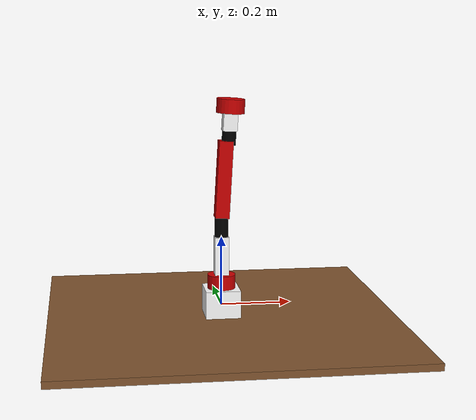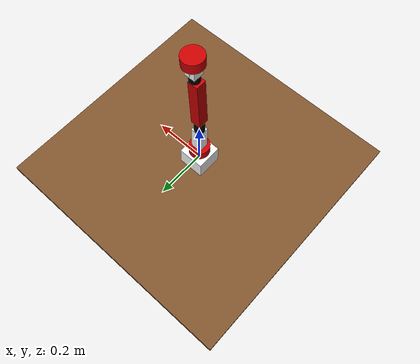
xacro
<?xml version="1.0"?>

<robot name="seven_dof_arm" xmlns:xacro="http://ros.org/wiki/xacro">

  <!-- Include materials -->

    <material name="Black">
        <color rgba="0.0 0.0 0.0 1.0"/>
    </material>

    <material name="Red">
        <color rgba="0.8 0.0 0.0 1.0"/>
    </material>

    <material name="White">
        <color rgba="1.0 1.0 1.0 1.0"/>
    </material>

  <xacro:property name="deg_to_rad" value="0.01745329251994329577"/>

  <!-- Constants -->
  <xacro:property name="M_SCALE" value="0.001 0.001 0.001"/>
  <xacro:property name="M_PI" value="3.14159"/>

  <!-- Shoulder pan link properties -->
  <xacro:property name="shoulder_pan_width" value="0.04" />
  <xacro:property name="shoulder_pan_len" value="0.08" />

  <!-- Shoulder pitch link properties -->
  <xacro:property name="shoulder_pitch_len" value="0.14" />
  <xacro:property name="shoulder_pitch_width" value="0.04" />
  <xacro:property name="shoulder_pitch_height" value="0.04" />

  <!-- Elbow roll link properties -->
  <xacro:property name="elbow_roll_width" value="0.02" />
  <xacro:property name="elbow_roll_len" value="0.06" />

  <!-- Elbow pitch link properties -->
  <xacro:property name="elbow_pitch_len" value="0.22" />
  <xacro:property name="elbow_pitch_width" value="0.04" />
  <xacro:property name="elbow_pitch_height" value="0.04" />

  <!-- Wrist roll link properties -->
  <xacro:property name="wrist_roll_width" value="0.02" />
  <xacro:property name="wrist_roll_len" value="0.04" />

  <!-- wrist pitch link properties -->
  <xacro:property name="wrist_pitch_len" value="0.06" />
  <xacro:property name="wrist_pitch_width" value="0.04" />
  <xacro:property name="wrist_pitch_height" value="0.04" />

  <!-- effector link properties -->
  <xacro:property name="effector_width" value="0.04" />
  <xacro:property name="effector_len" value="0.04" />

   <xacro:macro name="inertial_matrix" params="mass">
      <inertial>
      	<mass value="${mass}" />
        <inertia ixx="1.0" ixy="0.0" ixz="0.0" iyy="0.5" iyz="0.0" izz="1.0" />
      </inertial>
   </xacro:macro>

   <xacro:macro name="transmission_block" params="joint_name">
	  <transmission name="tran1">
	    <type>transmission_interface/SimpleTransmission</type>
	    <joint name="${joint_name}">
	      <hardwareInterface>hardware_interface/PositionJointInterface</hardwareInterface>
	    </joint>
	    <actuator name="motor1">
	      <hardwareInterface>hardware_interface/PositionJointInterface</hardwareInterface>
	      <mechanicalReduction>1</mechanicalReduction>
	    </actuator>
	  </transmission>
   </xacro:macro>

<!-- BOTTOM FIXED LINK
This link is the base of the arm in which arm is placed

-->

<link name="robot_footprint">

</link>
<joint name="base_joint" type="fixed">
  <origin xyz="0.0 0.0 0.0" rpy="0.0 0.0 0.0"/>
  <parent link="robot_footprint"/>
  <child link="base_link"/>
</joint>

  <joint name="bottom_joint" type="fixed">
    <origin xyz="0 0 0" rpy="0 0 0" />
    <parent link="base_link"/>
    <child link="bottom_link"/>
  </joint>

  <link name="bottom_link">

    <visual>
      <origin xyz=" 0 0 -0.04"  rpy="0 0 0"/>
      <geometry>

	       <box size="1 1 0.02" />

      </geometry>
      <material name="Brown" />
    </visual>

    <collision>
      <origin xyz=" 0 0 -0.04"  rpy="0 0 0"/>
      <geometry>
	       <box size="1 1 0.02" />
      </geometry>
      </collision>>

  </link>

  <gazebo reference="bottom_link">
    <material>Gazebo/White</material>
  </gazebo>

  <!-- BASE LINK -->
  <link name="base_link">

    <visual>
      <origin xyz="0 0 0" rpy="${M_PI/2} 0 0" /> <!-- rotate PI/2 -->
      <geometry>

	       <box size="0.1 0.1 0.1" />

      </geometry>
      <material name="White" />
    </visual>

    <collision>
      <origin xyz="0 0 0" rpy="${M_PI/2} 0 0" /> <!-- rotate PI/2 -->
      <geometry>

	       <box size="0.1 0.1 0.1" />

      </geometry>
    </collision>>
	  <xacro:inertial_matrix mass="1"/>

  </link>

  <gazebo reference="base_link">
    <material>Gazebo/White</material>
  </gazebo>

  <joint name="shoulder_pan_joint" type="revolute">
    <parent link="base_link"/>
    <child link="shoulder_pan_link"/>
    <origin xyz="0 0 0.05" rpy="0 ${M_PI/2} ${M_PI*0}" />
    <axis xyz="-1 0 0" />
    <limit effort="300" velocity="1" lower="-2.61799387799" upper="1.98394848567"/>
    <dynamics damping="50" friction="1"/>
  </joint>

  <!-- SHOULDER PAN LINK -->
  <link name="shoulder_pan_link" >

    <visual>
      <origin xyz="0 0 0" rpy="0 ${M_PI/2} 0" />
      <geometry>

            <cylinder radius="${shoulder_pan_width}" length="${shoulder_pan_len}"/>

      </geometry>
      <material name="Red" />
    </visual>

    <collision>
      <origin xyz="0 0 0" rpy="0 ${M_PI/2} 0" />
      <geometry>
            <cylinder radius="${shoulder_pan_width}" length="${shoulder_pan_len}"/>
      </geometry>
    </collision>
	 <xacro:inertial_matrix mass="1"/>
  </link>

  <gazebo reference="shoulder_pan_link">
    <material>Gazebo/Red</material>
  </gazebo>

  <joint name="shoulder_pitch_joint" type="revolute">
    <parent link="shoulder_pan_link"/>
    <child link="shoulder_pitch_link"/>
    <origin xyz="-0.041 0.0021 0.0" rpy="-${M_PI/2} 0 ${M_PI/2}" />
    <axis xyz="1 0 0" />
    <limit effort="300" velocity="1" lower="-1.19962513147" upper="1.89994105047" />
    <dynamics damping="50" friction="1"/>
  </joint>

  <!-- SHOULDER PITCH LINK -->
  <link name="shoulder_pitch_link" >

    <visual>
      <origin xyz="-0.002 0 0.04" rpy="0 ${M_PI/2} 0" />
      <geometry>

           <box size="${shoulder_pitch_len} ${shoulder_pitch_width} ${shoulder_pitch_height}" />

      </geometry>
      <material name="White" />
    </visual>

    <collision>
      <origin xyz="-0.002 0 0.04" rpy="0 ${M_PI/2} 0" />
      <geometry>
           <box size="${shoulder_pitch_len} ${shoulder_pitch_width} ${shoulder_pitch_height}" />
      </geometry>
    </collision>
	 <xacro:inertial_matrix mass="1"/>
  </link>

  <gazebo reference="shoulder_pitch_link">
    <material>Gazebo/White</material>
  </gazebo>

  <joint name="elbow_roll_joint" type="revolute">
    <parent link="shoulder_pitch_link"/>
    <child link="elbow_roll_link"/>
    <origin xyz="-0.002 0 0.1206" rpy="${M_PI} ${M_PI/2} 0" />
    <axis xyz="-1 0 0" />
    <limit effort="300" velocity="1" lower="-2.61799387799" upper="0.705631162427" />
    <dynamics damping="50" friction="1"/>
  </joint>

  <!-- ELBOW ROLL LINK -->
  <link name="elbow_roll_link" >

    <visual>
      <origin xyz="-0.015 0.0 -0.0" rpy="0 ${M_PI/2} 0" />
      <geometry>

            <cylinder radius="${elbow_roll_width}" length="${elbow_roll_len}"/>

      </geometry>
      <material name="Black" />
    </visual>

    <collision>
      <origin xyz="-0.015 0.0 -0.0" rpy="0 ${M_PI/2} 0" />
      <geometry>
            <cylinder radius="${elbow_roll_width}" length="${elbow_roll_len}"/>
      </geometry>
    </collision>
	<xacro:inertial_matrix mass="1"/>
  </link>

  <gazebo reference="elbow_roll_link">
    <material>Gazebo/Black</material>
  </gazebo>

  <joint name="elbow_pitch_joint" type="revolute">
    <parent link="elbow_roll_link"/>
    <child link="elbow_pitch_link"/>
    <origin xyz="-0.035 0 0.0" rpy="0.055 ${M_PI/2} 0" />
    <axis xyz="1 0 0" />
    <limit effort="300" velocity="1" lower="-1.5953400194" upper="1.93281579274" />
    <dynamics damping="50" friction="1"/>
  </joint>

  <!-- ELBOW PITCH LINK -->
  <link name="elbow_pitch_link" >

    <visual>
      <origin xyz="0 0 -0.12" rpy="0 ${M_PI/2} 0" />
      <geometry>

       <box size="${elbow_pitch_len} ${elbow_pitch_width} ${elbow_pitch_height}" />

      </geometry>
      <material name="Red" />
    </visual>

    <collision>
      <origin xyz="0 0 -0.12" rpy="0 ${M_PI/2} 0" />
      <geometry>
       <box size="${elbow_pitch_len} ${elbow_pitch_width} ${elbow_pitch_height}" />
      </geometry>
    </collision>
	 <xacro:inertial_matrix mass="1"/>
  </link>

  <gazebo reference="elbow_pitch_link">
    <material>Gazebo/Red</material>
  </gazebo>

  <joint name="wrist_roll_joint" type="revolute">
    <parent link="elbow_pitch_link"/>
    <child link="wrist_roll_link"/>
    <origin xyz="0.0 0.0081 -.248" rpy="0 ${M_PI/2} ${M_PI}" />
    <axis xyz="1 0 0" />
    <limit effort="300" velocity="1" lower="-2.61799387799" upper="2.6128806087" />
    <dynamics damping="50" friction="1"/>
  </joint>

  <!-- WRIST ROLL LINK -->
  <link name="wrist_roll_link" >
    <visual>
      <origin xyz="0 0 0" rpy="0 ${M_PI/2} 0" />
      <geometry>

           <cylinder radius="${elbow_roll_width}" length="${elbow_roll_len}"/>

      </geometry>
      <material name="Black" />
    </visual>

    <collision>
      <origin xyz="0 0 0" rpy="0 ${M_PI/2} 0" />
      <geometry>
           <cylinder radius="${elbow_roll_width}" length="${elbow_roll_len}"/>
      </geometry>
    </collision>
	 <xacro:inertial_matrix mass="1"/>

  </link>

  <gazebo reference="wrist_roll_link">
    <material>Gazebo/Black</material>
  </gazebo>

  <joint name="wrist_pitch_joint" type="revolute">
    <parent link="wrist_roll_link"/>
    <child link="wrist_pitch_link"/>
    <origin xyz="0.0 0.0 0.0001" rpy="0 ${M_PI/2} 0" />
    <axis xyz="1 0 0" />
    <limit effort="300" velocity="1" lower="-1.5953400194" upper="1.98394848567" />
    <dynamics damping="50" friction="1"/>
  </joint>

  <!-- WRIST PITCH LINK -->
  <link name="wrist_pitch_link">

    <visual>
      <origin xyz="0 0 0.04" rpy="0 ${M_PI/2} 0" />
      <geometry>

           <box size="${wrist_pitch_len} ${wrist_pitch_width} ${wrist_pitch_height}" />

      </geometry>
      <material name="White" />
    </visual>

    <collision>
      <origin xyz="0 0 0.04 " rpy="0 ${M_PI/2} 0" />
      <geometry>
          <box size="${wrist_pitch_len} ${wrist_pitch_width} ${wrist_pitch_height}" />
      </geometry>
    </collision>
	 <xacro:inertial_matrix mass="1"/>

  </link>

  <gazebo reference="wrist_pitch_link">
    <material>Gazebo/White</material>
  </gazebo>

  <joint name="effector_joint" type="fixed">
    <parent link="wrist_pitch_link"/>
    <child link="effector_link"/>
    <origin xyz="0 0 0.080" rpy="${1.5*M_PI} -${.5*M_PI} 0" />
    <axis xyz="1 0 0" />
  </joint>

  <!-- END Effector LINK -->
  <link name="effector_link">

    <visual>
      <origin xyz="0 0 0" rpy="0 ${M_PI/2} 0" />
      <geometry>

            <cylinder radius="${effector_width}" length="${effector_len}"/>

      </geometry>
      <material name="Red" />
    </visual>

    <collision>
      <origin xyz="0 0 0" rpy="0 ${M_PI/2} 0" />
      <geometry>
            <cylinder radius="${effector_width}" length="${effector_len}"/>
      </geometry>
    </collision>
	 <xacro:inertial_matrix mass="1"/>

  </link>

  <gazebo reference="effector_link">
    <material>Gazebo/Red</material>
  </gazebo>

  <!-- Transmissions for ROS Control -->

   <xacro:transmission_block joint_name="shoulder_pan_joint"/>
   <xacro:transmission_block joint_name="shoulder_pitch_joint"/>
   <xacro:transmission_block joint_name="elbow_roll_joint"/>
   <xacro:transmission_block joint_name="elbow_pitch_joint"/>
   <xacro:transmission_block joint_name="wrist_roll_joint"/>
   <xacro:transmission_block joint_name="wrist_pitch_joint"/>

 <!-- ros_control plugin -->
  <gazebo>
    <plugin name="gazebo_ros_control" filename="libgazebo_ros_control.so">
      <robotNamespace>/seven_dof_arm</robotNamespace>
    </plugin>
  </gazebo>

</robot>
